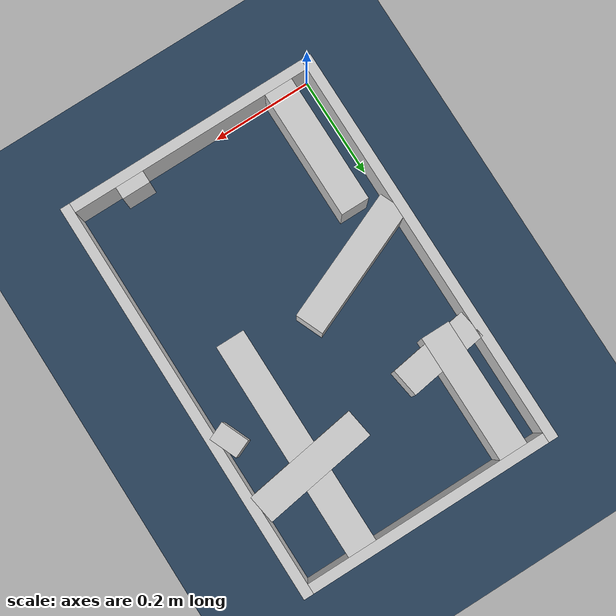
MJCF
<?xml version="1.0" ?>
<mujoco model="generated_real_template">
  <compiler angle="degree"/>
  <option timestep="0.002" integrator="implicitfast" iterations="100" cone="elliptic"/>
  <default>
    <geom density="1"/>
  </default>
  <asset>
    <texture builtin="gradient" height="3072" rgb1="0.3 0.5 0.7" rgb2="0 0 0" type="skybox" width="512"/>
    <texture builtin="checker" height="300" mark="edge" markrgb="0.8 0.8 0.8" name="groundplane" rgb1="0.2 0.3 0.4" rgb2="0.1 0.2 0.3" type="2d" width="300"/>
    <material name="groundplane" reflectance="0.2" texrepeat="5 5" texture="groundplane" texuniform="true"/>
  </asset>
  <worldbody>
    <light dir="0 0 -1" directional="true" pos="0 0 1.5"/>
    <geom name="floor" type="plane" condim="4" friction="0.5 0.005 0.001" material="groundplane" size="0 0 0.05"/>
    <body name="walls">
      <geom name="wall_boundary_left" type="box" condim="4" friction="1.0 0.005 0.0001" rgba="0.8 0.8 0.8 1" pos="-0.010000 0.387500 0.050000" euler="0 0 0.000000" size="0.010000 0.407500 0.050000"/>
      <geom name="wall_boundary_right" type="box" condim="4" friction="1.0 0.005 0.0001" rgba="0.8 0.8 0.8 1" pos="0.500000 0.387500 0.050000" euler="0 0 0.000000" size="0.010000 0.407500 0.050000"/>
      <geom name="wall_boundary_bottom" type="box" condim="4" friction="1.0 0.005 0.0001" rgba="0.8 0.8 0.8 1" pos="0.245000 -0.010000 0.050000" euler="0 0 0.000000" size="0.245000 0.010000 0.050000"/>
      <geom name="wall_boundary_top" type="box" condim="4" friction="1.0 0.005 0.0001" rgba="0.8 0.8 0.8 1" pos="0.245000 0.785000 0.050000" euler="0 0 0.000000" size="0.245000 0.010000 0.050000"/>
      <geom name="wall_inner_1_1" type="box" condim="4" friction="1.0 0.005 0.0001" rgba="0.8 0.8 0.8 1" pos="0.376735 0.012181 0.050000" euler="0 0 90.000000" size="0.012181 0.028500 0.050000"/>
      <geom name="wall_inner_1_2" type="box" condim="4" friction="1.0 0.005 0.0001" rgba="0.8 0.8 0.8 1" pos="0.376735 0.557010 0.050000" euler="0 0 90.000000" size="0.217990 0.028500 0.050000"/>
      <geom name="wall_inner_2_1" type="box" condim="4" friction="1.0 0.005 0.0001" rgba="0.8 0.8 0.8 1" pos="0.122196 0.341420 0.050000" euler="0 0 22.894161" size="0.132645 0.028500 0.050000"/>
      <geom name="wall_inner_2_2" type="box" condim="4" friction="1.0 0.005 0.0001" rgba="0.8 0.8 0.8 1" pos="0.472731 0.489450 0.050000" euler="0 0 22.894161" size="0.018746 0.028500 0.050000"/>
      <geom name="wall_inner_3_1" type="box" condim="4" friction="1.0 0.005 0.0001" rgba="0.8 0.8 0.8 1" pos="0.376298 0.605517 0.050000" euler="0 0 -171.150193" size="0.115072 0.028500 0.050000"/>
      <geom name="wall_inner_3_2" type="box" condim="4" friction="1.0 0.005 0.0001" rgba="0.8 0.8 0.8 1" pos="0.078706 0.559183 0.050000" euler="0 0 -171.150193" size="0.079655 0.028500 0.050000"/>
      <geom name="wall_inner_4_1" type="box" condim="4" friction="1.0 0.005 0.0001" rgba="0.8 0.8 0.8 1" pos="0.061340 0.129149 0.050000" euler="0 0 90.000000" size="0.129149 0.028500 0.050000"/>
      <geom name="wall_inner_4_2" type="box" condim="4" friction="1.0 0.005 0.0001" rgba="0.8 0.8 0.8 1" pos="0.061340 0.647833 0.050000" euler="0 0 90.000000" size="0.127167 0.028500 0.050000"/>
    </body>
  </worldbody>
</mujoco>
